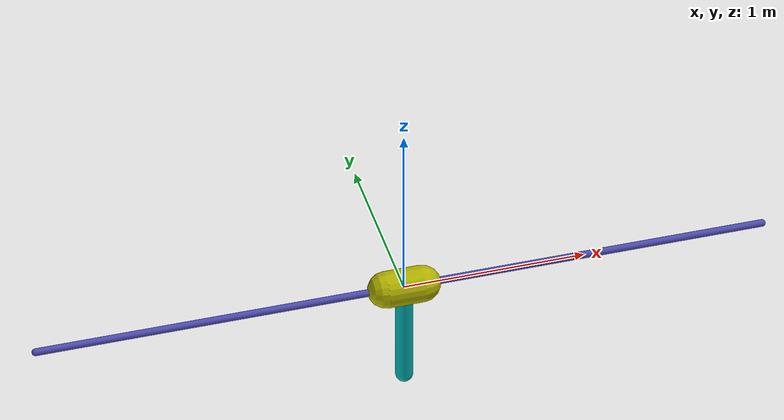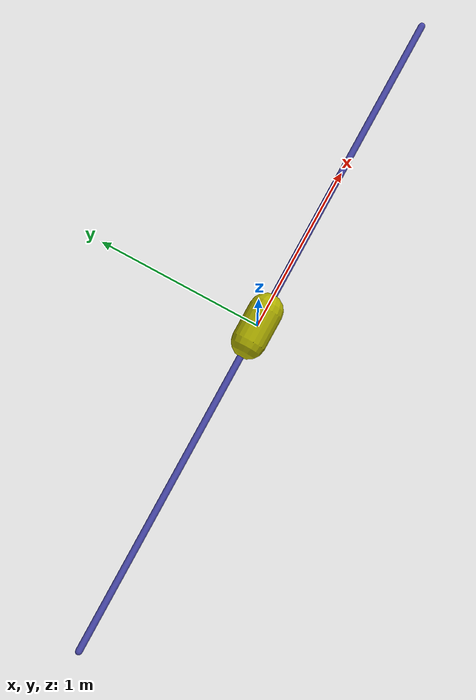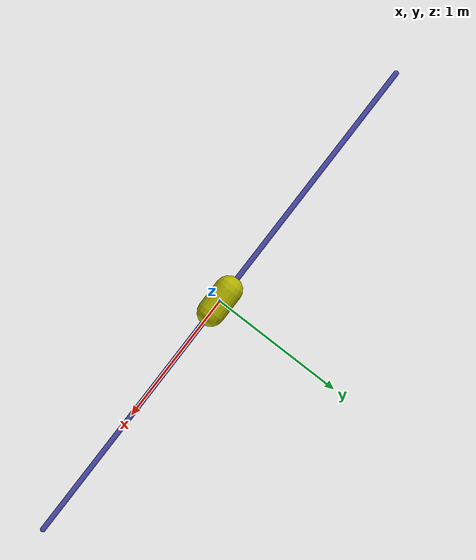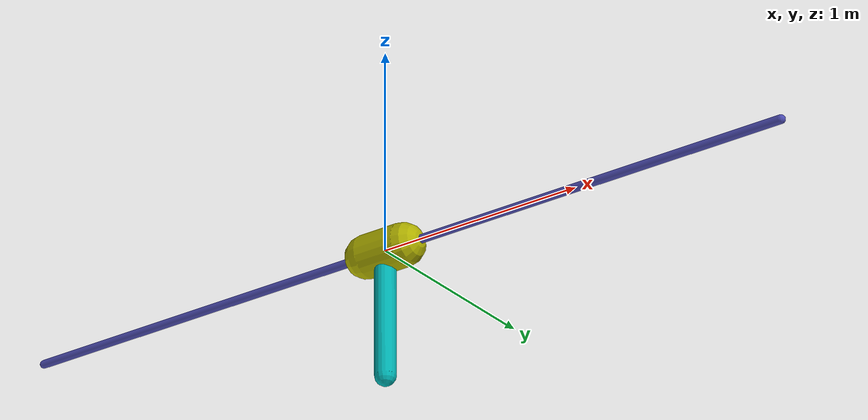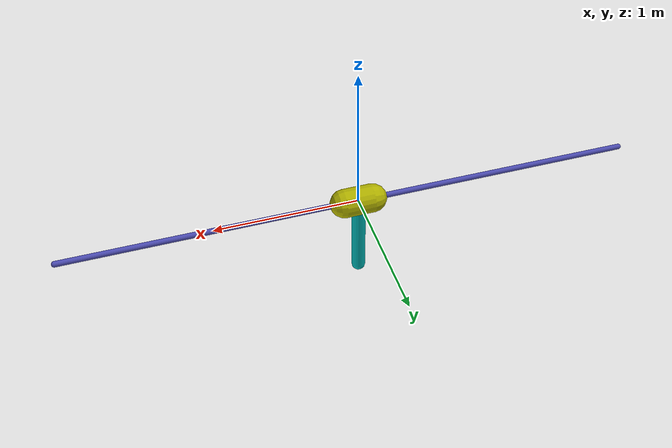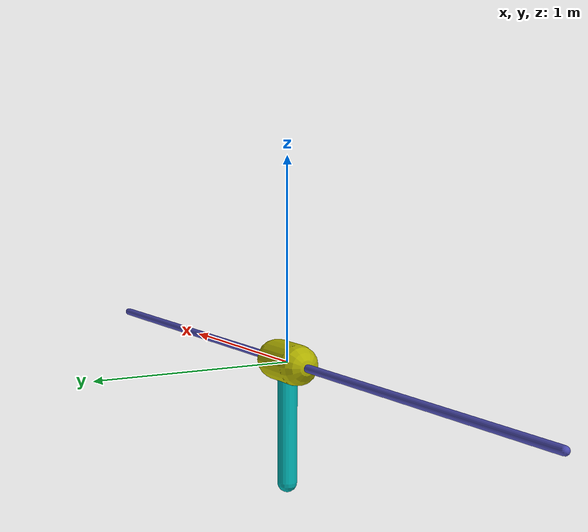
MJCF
<mujoco model="inverted pendulum">
	<compiler inertiafromgeom="true"/>
	<default>
		<joint armature="0" limited="true"/>
		<geom contype="0" rgba="0.7 0.7 0 1"/>
		<tendon/>
	</default>
	<option gravity="0 0 -9.81" integrator="RK4" timestep="0.02"/>
	<size nstack="3000"/>
	<worldbody>
		<geom name="rail" pos="0 0 0" quat="0.707 0 0.707 0" friction="1 0.1 0.1" rgba="0.3 0.3 0.7 1" size="0.02 2" type="capsule"/>
		<body name="cart" pos="0 0 0">
			<joint axis="1 0 0" limited="true" name="slider" damping="0.5" pos="0 0 0" range="-2 2" type="slide"/>
			<geom name="cart" pos="0 0 0" mass="10" quat="0.707 0 0.707 0" size="0.1 0.1" type="capsule"/>
			<body name="pole" pos="0 0 0">
				<joint axis="0 1 0" name="hinge" damping="0.5" pos="0 0 0" limited="false" type="hinge"/>
				<geom fromto="0 0 0 0.001 0 -0.6" friction="1 0.1 0.1" name="cpole" rgba="0 0.7 0.7 1" size="0.049 0.4" type="capsule" mass="5"/>
			</body>
		</body>
	</worldbody>
	<actuator>
		<general gear="200" gainprm="1 0 0"  joint="slider" name="slide" ctrlrange="-3 3"/>
	</actuator>
</mujoco>
